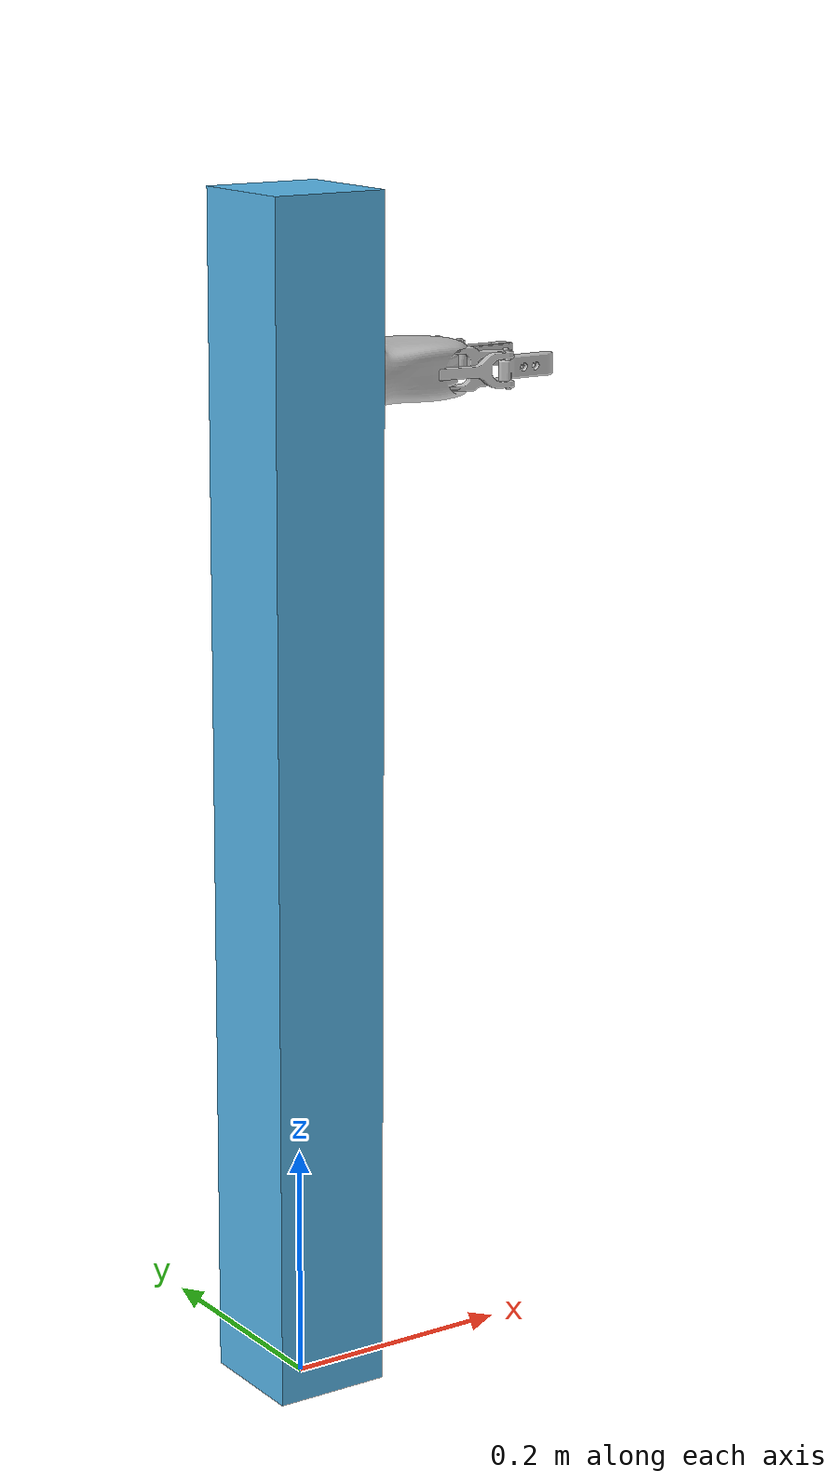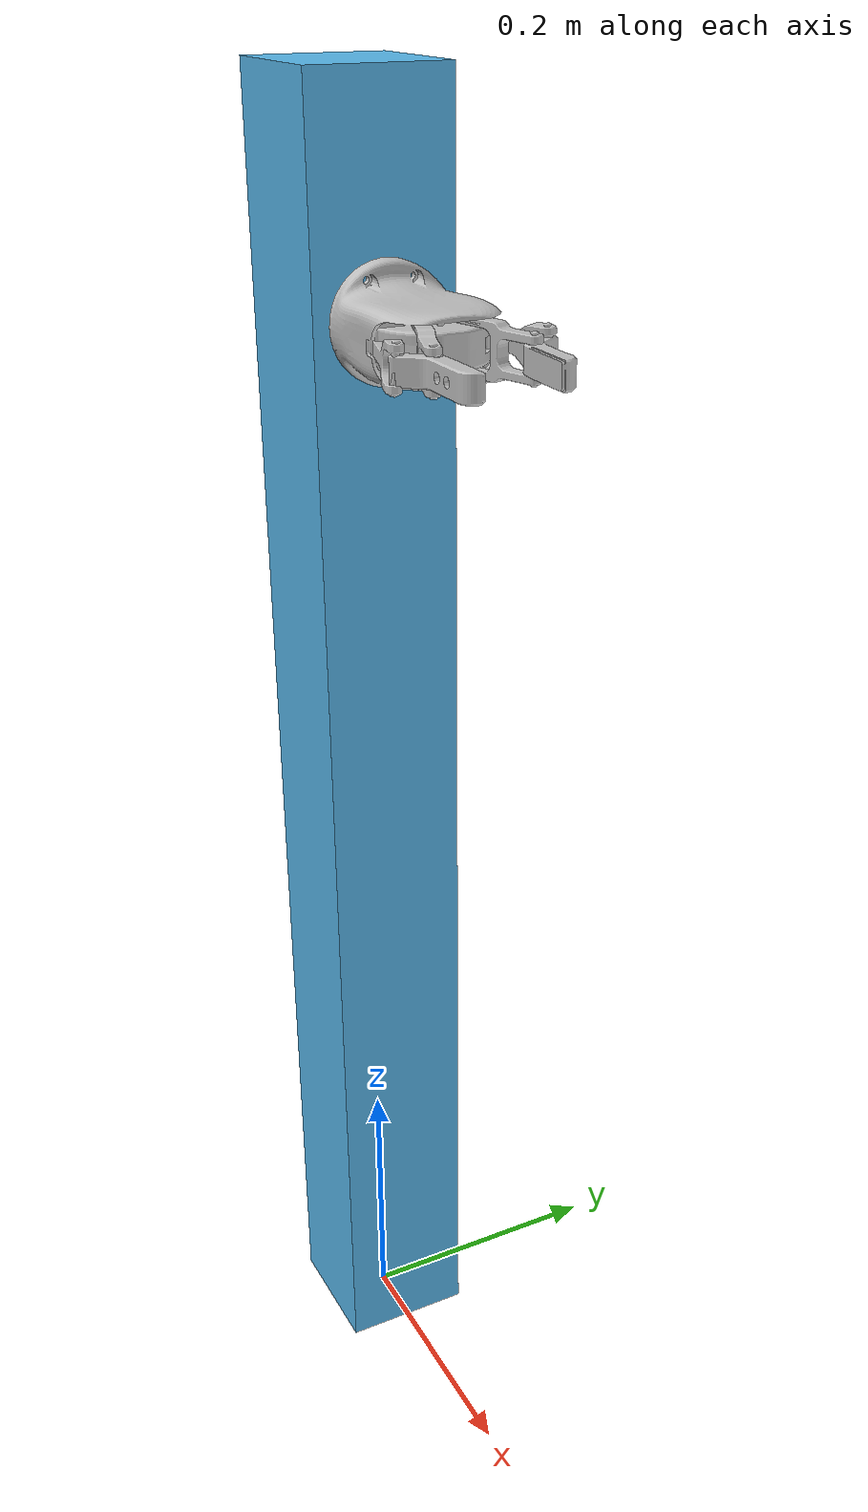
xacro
<?xml version="1.0" ?>

<robot name="utra_gripper" xmlns:xacro="http://ros.org/wiki/xacro">
    <xacro:include filename="$(find utra_gripper)/urdf/gripper.urdf.xacro" />

    <gazebo>
        <plugin name="gazebo_ros_control" filename="libgazebo_ros_control.so">
            <robotNamespace>/</robotNamespace>
        </plugin>
    </gazebo>

    <link name="world"/>
    <joint name="world_fixed" type="fixed">
        <origin xyz="0 0 0" rpy="0 0 0"/>
        <parent link="world"/>
        <child link="gripper_root_link"/>
    </joint>

    <link name="gripper_root_link">
        <visual>
            <origin xyz="0 0 0.5" rpy="0 0 0"/>
            <geometry>
                <box size="0.1 0.1 1.0"/>
            </geometry>
        </visual>
        <collision>
            <origin xyz="0 0 0.5" rpy="0 0 0"/>
            <geometry>
                <box size="0.1 0.1 1.0"/>
            </geometry>
        </collision>
        <inertial>
            <mass value="1e2" />
            <origin xyz="0.0 0.0 0.0" />
            <inertia ixx = "0.000001" ixy = "0.000000" ixz = "0.000000"
                     iyx = "0.000000" iyy = "0.000001" iyz = "0.000000"
                     izx = "0.000000" izy = "0.000000" izz = "0.000001" />
        </inertial>
    </link>

    <xacro:gripper prefix="" parent="gripper_root_link" >
        <origin xyz="0.05 0 0.85" rpy="0 1.57 0"/>
    </xacro:gripper>

</robot>

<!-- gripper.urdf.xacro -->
<robot xmlns:xacro="http://ros.org/wiki/xacro">
<xacro:include filename="$(find utra_gripper)/urdf/gripper.transmission.xacro" />
    <xacro:macro name="gripper" params="prefix parent *origin">
        <joint name="${prefix}gripper_base_joint" type="fixed">
            <parent link="${parent}"/>
            <child link="${prefix}base_link_gripper"/>
            <xacro:insert_block name="origin"/>
        </joint>
        <xacro:property name="mass_base"  value="0.00001" />
        <link
            name="base_link_gripper">
            <inertial>
            <origin
                xyz="-0.016093 0.0024206 0.03061"
                rpy="0 0 0" />
            <mass
                value="${mass_base}" />
            <inertia
                ixx="3.1219E-06"
                ixy="-2.5375E-07"
                ixz="8.5389E-07"
                iyy="6.5006E-06"
                iyz="-1.1996E-07"
                izz="7.1641E-06" />
            </inertial>
            <visual>
            <origin
                xyz="0 0 0"
                rpy="0 0 0" />
            <geometry>
                <mesh
                filename="package://utra_gripper/meshes/base.stl" />
            </geometry>
            <material
                name="">
                <color
                rgba="0.75294 0.75294 0.75294 1" />
            </material>
            </visual>
            <collision>
            <origin
                xyz="0 0 0"
                rpy="0 0 0" />
            <geometry>
                <mesh
                filename="package://utra_gripper/meshes/base.stl" />
            </geometry>
            </collision>
        </link>

        <gazebo reference="${prefix}base_link_gripper">
            <implicitSpringDamper>1</implicitSpringDamper>
            <mu1>100000</mu1>
            <mu2>100000</mu2>
            <kp>100000000.0</kp>
            <kd>1.0</kd>
        </gazebo>

        <link
            name="left_knuckle_link">
            <inertial>
            <origin
                xyz="0.0004174 0.0081181 0.00092142"
                rpy="0 0 0" />
            <mass
                value="${mass_base}" />
            <inertia
                ixx="1.2495E-07"
                ixy="2.3126E-09"
                ixz="-5.8721E-10"
                iyy="9.2991E-09"
                iyz="2.9378E-08"
                izz="1.1574E-07" />
            </inertial>
            <visual>
            <origin
                xyz="0 0 0"
                rpy="0 0 0" />
            <geometry>
                <mesh
                filename="package://utra_gripper/meshes/knuckle.stl" />
            </geometry>
            <material
                name="">
                <color
                rgba="0.75294 0.75294 0.75294 1" />
            </material>
            </visual>
            <collision>
            <origin
                xyz="0 0 0"
                rpy="0 0 0" />
            <geometry>
                <mesh
                filename="package://utra_gripper/meshes/knuckle.stl" />
            </geometry>
            </collision>
        </link>

        <gazebo reference="${prefix}left_knuckle_link">
            <implicitSpringDamper>1</implicitSpringDamper>
            <mu1>100000</mu1>
            <mu2>100000</mu2>
            <kp>100000000.0</kp>
            <kd>1.0</kd>
        </gazebo>

        <joint
            name="left_knuckle_joint"
            type="revolute">
            <origin
            xyz="0 -0.033 0.063"
            rpy="1.5708 0 1.50" />
            <parent
            link="base_link_gripper" />
            <child
            link="left_knuckle_link" />
            <axis
            xyz="0 0 1" />
            <limit
            lower="-1.57"
            upper="1.57"
            effort="1000"
            velocity="2.0" />
        </joint>
        <link
            name="right_knuckle_link">
            <inertial>
            <origin
                xyz="0.00045059 0.0080041 0.0020288"
                rpy="0 0 0" />
            <mass
                value="${mass_base}" />
            <inertia
                ixx="1.411E-07"
                ixy="1.9567E-09"
                ixz="5.9037E-10"
                iyy="9.5283E-09"
                iyz="-3.0312E-08"
                izz="1.3178E-07" />
            </inertial>
            <visual>
            <origin
                xyz="0 0 0"
                rpy="0 0 0" />
            <geometry>
                <mesh
                filename="package://utra_gripper/meshes/knuckle.stl" />
            </geometry>
            <material
                name="">
                <color
                rgba="0.75294 0.75294 0.75294 1" />
            </material>
            </visual>
            <collision>
            <origin
                xyz="0 0 0"
                rpy="0 0 0" />
            <geometry>
                <mesh
                filename="package://utra_gripper/meshes/knuckle.stl" />
            </geometry>
            </collision>
        </link>

        <gazebo reference="${prefix}right_knuckle_link">
            <implicitSpringDamper>1</implicitSpringDamper>
            <mu1>100000</mu1>
            <mu2>100000</mu2>
            <kp>100000000.0</kp>
            <kd>1.0</kd>
        </gazebo>

        <joint
            name="right_knuckle_joint"
            type="revolute">
            <origin
            xyz="0 0.033 0.063"
            rpy="1.5708 0 -1.50" />
            <parent
            link="base_link_gripper" />
            <child
            link="right_knuckle_link" />
            <axis
            xyz="0 0 -1" />
            <limit
            lower="-1.57"
            upper="1.57"
            effort="1000"
            velocity="2.0" />
            <mimic joint="${prefix}left_knuckle_joint" multiplier="-1"/>
        </joint>
        <link
            name="left_inner_knuckle_link">
            <inertial>
            <origin
                xyz="-0.013801 1.3512E-10 -0.0091952"
                rpy="0 0 0" />
            <mass
                value="${mass_base}" />
            <inertia
                ixx="2.6043E-08"
                ixy="1.1504E-16"
                ixz="-2.1172E-09"
                iyy="1.3937E-07"
                iyz="1.3652E-15"
                izz="1.1332E-07" />
            </inertial>
            <visual>
            <origin
                xyz="0 0 0"
                rpy="0 0 0" />
            <geometry>
                <mesh
                filename="package://utra_gripper/meshes/inner_knuckle.stl" />
            </geometry>
            <material
                name="">
                <color
                rgba="0.75294 0.75294 0.75294 1" />
            </material>
            </visual>
            <collision>
            <origin
                xyz="0 0 0"
                rpy="0 0 0" />
            <geometry>
                <mesh
                filename="package://utra_gripper/meshes/inner_knuckle.stl" />
            </geometry>
            </collision>
        </link>

        <gazebo reference="${prefix}left_inner_knuckle_link">
            <implicitSpringDamper>1</implicitSpringDamper>
            <mu1>100000</mu1>
            <mu2>100000</mu2>
            <kp>100000000.0</kp>
            <kd>1.0</kd>
        </gazebo>

        <joint
            name="left_inner_knuckle_joint"
            type="revolute">
            <origin
            xyz="0 -0.013 0.075"
            rpy="1.5708 1.2 1.5708" />
            <parent
            link="base_link_gripper" />
            <child
            link="left_inner_knuckle_link" />
            <axis
            xyz="0 0 1" />
            <limit
            lower="-1.57"
            upper="1.57"
            effort="1000"
            velocity="2.0" />
            <mimic joint="${prefix}left_knuckle_joint" multiplier="1"/>
        </joint>
        <link
            name="left_finger_link">
            <inertial>
            <origin
                xyz="-0.0038459 0.0027734 -5.6082E-05"
                rpy="0 0 0" />
            <mass
                value="${mass_base}" />
            <inertia
                ixx="1.0044E-07"
                ixy="2.7289E-08"
                ixz="-1.1114E-09"
                iyy="1.5056E-08"
                iyz="3.8024E-09"
                izz="1.0134E-07" />
            </inertial>
            <visual>
            <origin
                xyz="0 0 0"
                rpy="0 0 0" />
            <geometry>
                <mesh
                filename="package://utra_gripper/meshes/finger.stl" />
            </geometry>
            <material
                name="">
                <color
                rgba="0.75294 0.75294 0.75294 1" />
            </material>
            </visual>
            <collision>
            <origin
                xyz="0 0 0"
                rpy="0 0 0" />
            <geometry>
                <mesh
                filename="package://utra_gripper/meshes/finger.stl" />
            </geometry>
            </collision>
        </link>

        <gazebo reference="${prefix}left_finger_link">
            <implicitSpringDamper>1</implicitSpringDamper>
            <mu1>100000</mu1>
            <mu2>100000</mu2>
            <kp>100000000.0</kp>
            <kd>1.0</kd>
        </gazebo>

        <joint
            name="left_finger_joint"
            type="revolute">
            <origin
            xyz="-0.058 0.005 0"
            rpy="9.0533E-10 -1.7902E-09 1.2" />
            <parent
            link="left_inner_knuckle_link" />
            <child
            link="left_finger_link" />
            <axis
            xyz="0 0 1" />
            <limit
            lower="-1.57"
            upper="1.57"
            effort="1000"
            velocity="2.0" />
            <mimic joint="${prefix}left_knuckle_joint" multiplier="-1"/>
        </joint>
        <link
            name="right_inner_knuckle_link">
            <inertial>
            <origin
                xyz="-0.013801 4.8285E-11 0.0069248"
                rpy="0 0 0" />
            <mass
                value="${mass_base}" />
            <inertia
                ixx="2.6043E-08"
                ixy="-1.1384E-15"
                ixz="-2.1172E-09"
                iyy="1.3937E-07"
                iyz="5.1669E-16"
                izz="1.1332E-07" />
            </inertial>
            <visual>
            <origin
                xyz="0 0 0"
                rpy="0 0 0" />
            <geometry>
                <mesh
                filename="package://utra_gripper/meshes/inner_knuckle.stl" />
            </geometry>
            <material
                name="">
                <color
                rgba="0.75294 0.75294 0.75294 1" />
            </material>
            </visual>
            <collision>
            <origin
                xyz="0 0 0"
                rpy="0 0 0" />
            <geometry>
                <mesh
                filename="package://utra_gripper/meshes/inner_knuckle.stl" />
            </geometry>
            </collision>
        </link>

        <gazebo reference="${prefix}right_inner_knuckle_link">
            <implicitSpringDamper>1</implicitSpringDamper>
            <mu1>100000</mu1>
            <mu2>100000</mu2>
            <kp>100000000.0</kp>
            <kd>1.0</kd>
        </gazebo>

        <joint
            name="right_inner_knuckle_joint"
            type="revolute">
            <origin
            xyz="0 0.016 0.075"
            rpy="-1.5708 1.3 -1.5708" />
            <parent
            link="base_link_gripper" />
            <child
            link="right_inner_knuckle_link" />
            <axis
            xyz="0 0 1" />
            <limit
            lower="-1.57"
            upper="1.57"
            effort="1000"
            velocity="2.0" />
            <mimic joint="${prefix}left_knuckle_joint" multiplier="-1"/>
        </joint>
        <link
            name="right_finger_link">
            <inertial>
            <origin
                xyz="-0.0038459 0.0027734 0.0030561"
                rpy="0 0 0" />
            <mass
                value="${mass_base}" />
            <inertia
                ixx="1.0044E-07"
                ixy="2.7289E-08"
                ixz="1.1114E-09"
                iyy="1.5056E-08"
                iyz="-3.8024E-09"
                izz="1.0134E-07" />
            </inertial>
            <visual>
            <origin
                xyz="0 0 0"
                rpy="0 0 0" />
            <geometry>
                <mesh
                filename="package://utra_gripper/meshes/finger.stl" />
            </geometry>
            <material
                name="">
                <color
                rgba="0.75294 0.75294 0.75294 1" />
            </material>
            </visual>
            <collision>
            <origin
                xyz="0 0 0"
                rpy="0 0 0" />
            <geometry>
                <mesh
                filename="package://utra_gripper/meshes/finger.stl" />
            </geometry>
            </collision>
        </link>

        <gazebo reference="${prefix}right_finger_link">
            <implicitSpringDamper>1</implicitSpringDamper>
            <mu1>100000</mu1>
            <mu2>100000</mu2>
            <kp>100000000.0</kp>
            <kd>1.0</kd>
        </gazebo>

        <joint
            name="right_finger_joint"
            type="revolute">
            <origin
            xyz="-0.058 0 0"
            rpy="-3.1416 1.7902E-09 -1.275" />
            <parent
            link="right_inner_knuckle_link" />
            <child
            link="right_finger_link" />
            <axis
            xyz="0 0 -1" />
            <limit
            lower="-1.57"
            upper="1.57"
            effort="1000"
            velocity="2.0" />
            <mimic joint="${prefix}left_knuckle_joint" multiplier="1"/>
        </joint>

        <xacro:gripper_transmission prefix="${prefix}"/>

    </xacro:macro>
</robot>
